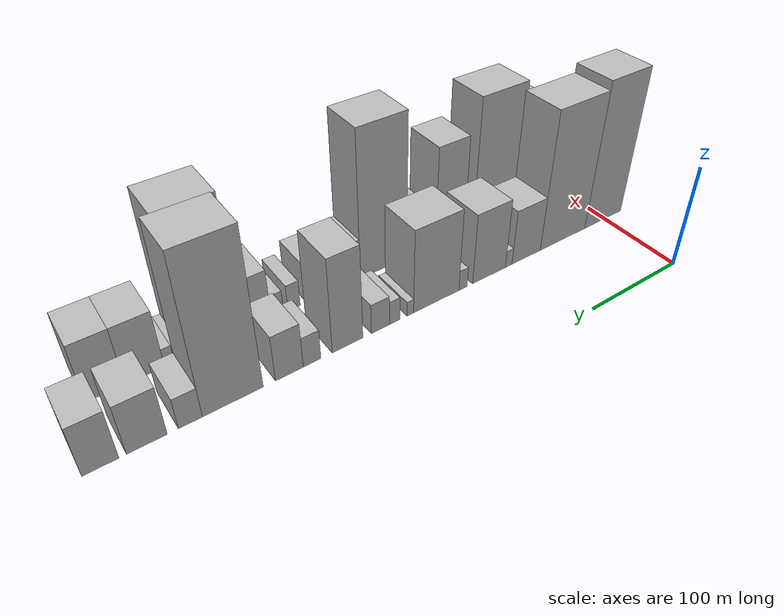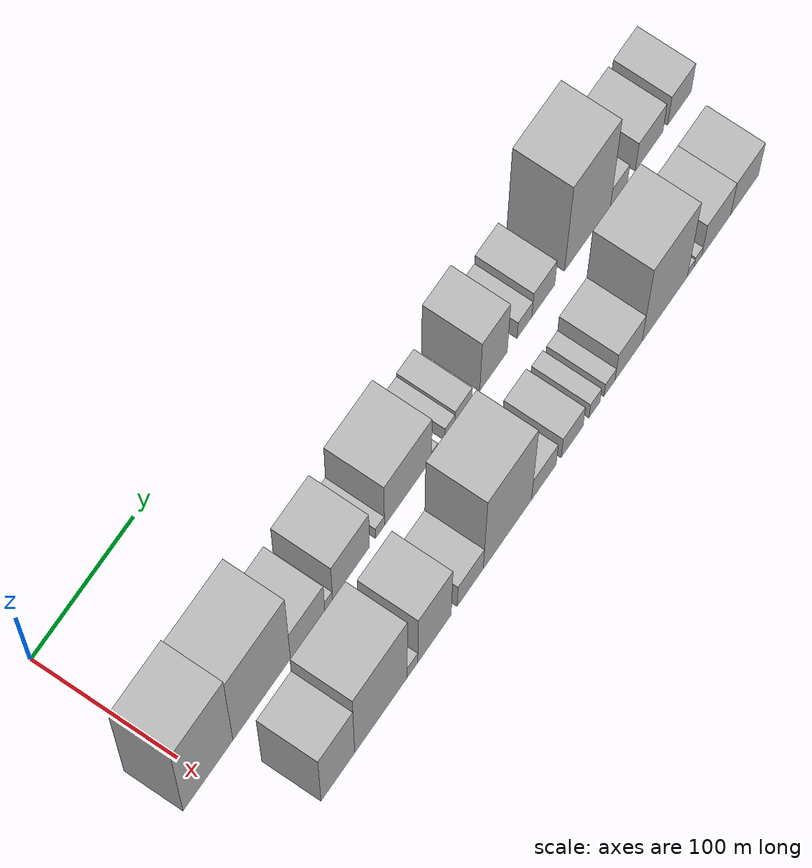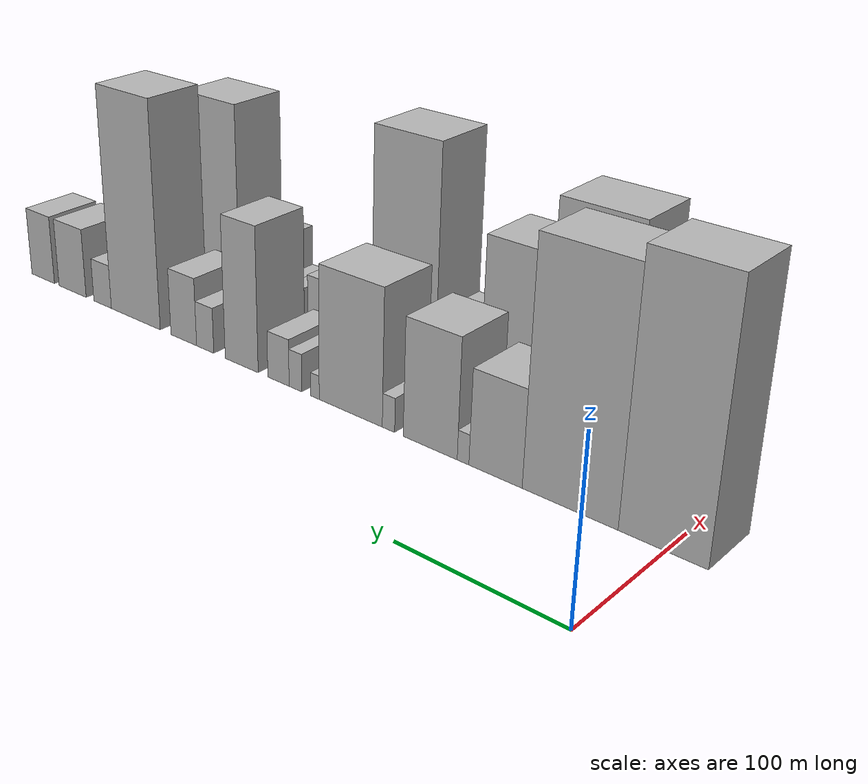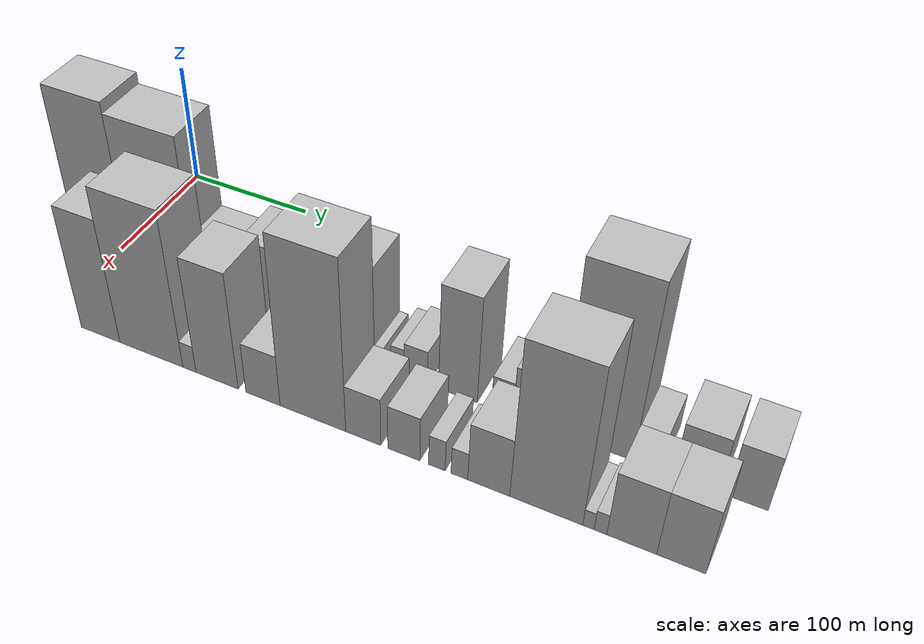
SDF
<sdf version="1.6">
 <world name="default">
  <model name="building_15">
   <static>1</static>
   <pose>100.0000 1.8041 0 0.000000 0.000000 0.000000</pose>
   <link name="link">
    <pose>0 0 75.00 0 0 0</pose>
    <collision name="collision"><geometry><box><size>40.0000 48.3091 150.0000</size></box></geometry></collision>
    <visual name="visual">
     <cast_shadows>0</cast_shadows>
     <geometry><box><size>40.0000 48.3091 150.0000</size></box></geometry>
     <material>
      <script>
       <uri>model://HANNAS_wall/materials/scripts</uri>
       <uri>model://HANNAS_wall/materials/textures</uri>
       <name>vrc/HANNAS_wall</name>
      </script>
     </material>
    </visual>
   </link>
  </model>
  <model name="building_16">
   <static>1</static>
   <pose>100.0000 54.0639 0 0.000000 0.000000 0.000000</pose>
   <link name="link">
    <pose>0 0 70.50 0 0 0</pose>
    <collision name="collision"><geometry><box><size>40.0000 56.2105 141.0000</size></box></geometry></collision>
    <visual name="visual">
     <cast_shadows>0</cast_shadows>
     <geometry><box><size>40.0000 56.2105 141.0000</size></box></geometry>
     <material>
      <script>
       <uri>model://HANNAS_wall/materials/scripts</uri>
       <uri>model://HANNAS_wall/materials/textures</uri>
       <name>vrc/HANNAS_wall</name>
      </script>
     </material>
    </visual>
   </link>
  </model>
  <model name="building_17">
   <static>1</static>
   <pose>100.0000 99.0223 0 0.000000 0.000000 0.000000</pose>
   <link name="link">
    <pose>0 0 28.50 0 0 0</pose>
    <collision name="collision"><geometry><box><size>40.0000 33.7064 57.0000</size></box></geometry></collision>
    <visual name="visual">
     <cast_shadows>0</cast_shadows>
     <geometry><box><size>40.0000 33.7064 57.0000</size></box></geometry>
     <material>
      <script>
       <uri>model://HANNAS_wall/materials/scripts</uri>
       <uri>model://HANNAS_wall/materials/textures</uri>
       <name>vrc/HANNAS_wall</name>
      </script>
     </material>
    </visual>
   </link>
  </model>
  <model name="building_18">
   <static>1</static>
   <pose>100.0000 119.7152 0 0.000000 0.000000 0.000000</pose>
   <link name="link">
    <pose>0 0 9.00 0 0 0</pose>
    <collision name="collision"><geometry><box><size>40.0000 7.6794 18.0000</size></box></geometry></collision>
    <visual name="visual">
     <cast_shadows>0</cast_shadows>
     <geometry><box><size>40.0000 7.6794 18.0000</size></box></geometry>
     <material>
      <script>
       <uri>model://HANNAS_wall/materials/scripts</uri>
       <uri>model://HANNAS_wall/materials/textures</uri>
       <name>vrc/HANNAS_wall</name>
      </script>
     </material>
    </visual>
   </link>
  </model>
  <model name="building_19">
   <static>1</static>
   <pose>100.0000 141.9152 0 0.000000 0.000000 0.000000</pose>
   <link name="link">
    <pose>0 0 36.00 0 0 0</pose>
    <collision name="collision"><geometry><box><size>40.0000 36.7206 72.0000</size></box></geometry></collision>
    <visual name="visual">
     <cast_shadows>0</cast_shadows>
     <geometry><box><size>40.0000 36.7206 72.0000</size></box></geometry>
     <material>
      <script>
       <uri>model://HANNAS_wall/materials/scripts</uri>
       <uri>model://HANNAS_wall/materials/textures</uri>
       <name>vrc/HANNAS_wall</name>
      </script>
     </material>
    </visual>
   </link>
  </model>
  <model name="building_20">
   <static>1</static>
   <pose>100.0000 170.6865 0 0.000000 0.000000 0.000000</pose>
   <link name="link">
    <pose>0 0 10.50 0 0 0</pose>
    <collision name="collision"><geometry><box><size>40.0000 8.8220 21.0000</size></box></geometry></collision>
    <visual name="visual">
     <cast_shadows>0</cast_shadows>
     <geometry><box><size>40.0000 8.8220 21.0000</size></box></geometry>
     <material>
      <script>
       <uri>model://HANNAS_wall/materials/scripts</uri>
       <uri>model://HANNAS_wall/materials/textures</uri>
       <name>vrc/HANNAS_wall</name>
      </script>
     </material>
    </visual>
   </link>
  </model>
  <model name="building_21">
   <static>1</static>
   <pose>100.0000 198.5647 0 0.000000 0.000000 0.000000</pose>
   <link name="link">
    <pose>0 0 42.00 0 0 0</pose>
    <collision name="collision"><geometry><box><size>40.0000 46.9344 84.0000</size></box></geometry></collision>
    <visual name="visual">
     <cast_shadows>0</cast_shadows>
     <geometry><box><size>40.0000 46.9344 84.0000</size></box></geometry>
     <material>
      <script>
       <uri>model://HANNAS_wall/materials/scripts</uri>
       <uri>model://HANNAS_wall/materials/textures</uri>
       <name>vrc/HANNAS_wall</name>
      </script>
     </material>
    </visual>
   </link>
  </model>
  <model name="building_22">
   <static>1</static>
   <pose>100.0000 225.3396 0 0.000000 0.000000 0.000000</pose>
   <link name="link">
    <pose>0 0 7.50 0 0 0</pose>
    <collision name="collision"><geometry><box><size>40.0000 6.6154 15.0000</size></box></geometry></collision>
    <visual name="visual">
     <cast_shadows>0</cast_shadows>
     <geometry><box><size>40.0000 6.6154 15.0000</size></box></geometry>
     <material>
      <script>
       <uri>model://HANNAS_wall/materials/scripts</uri>
       <uri>model://HANNAS_wall/materials/textures</uri>
       <name>vrc/HANNAS_wall</name>
      </script>
     </material>
    </visual>
   </link>
  </model>
  <model name="building_23">
   <static>1</static>
   <pose>100.0000 240.6629 0 0.000000 0.000000 0.000000</pose>
   <link name="link">
    <pose>0 0 12.00 0 0 0</pose>
    <collision name="collision"><geometry><box><size>40.0000 10.0314 24.0000</size></box></geometry></collision>
    <visual name="visual">
     <cast_shadows>0</cast_shadows>
     <geometry><box><size>40.0000 10.0314 24.0000</size></box></geometry>
     <material>
      <script>
       <uri>model://HANNAS_wall/materials/scripts</uri>
       <uri>model://HANNAS_wall/materials/textures</uri>
       <name>vrc/HANNAS_wall</name>
      </script>
     </material>
    </visual>
   </link>
  </model>
  <model name="building_24">
   <static>1</static>
   <pose>100.0000 254.2844 0 0.000000 0.000000 0.000000</pose>
   <link name="link">
    <pose>0 0 15.00 0 0 0</pose>
    <collision name="collision"><geometry><box><size>40.0000 17.2115 30.0000</size></box></geometry></collision>
    <visual name="visual">
     <cast_shadows>0</cast_shadows>
     <geometry><box><size>40.0000 17.2115 30.0000</size></box></geometry>
     <material>
      <script>
       <uri>model://HANNAS_wall/materials/scripts</uri>
       <uri>model://HANNAS_wall/materials/textures</uri>
       <name>vrc/HANNAS_wall</name>
      </script>
     </material>
    </visual>
   </link>
  </model>
  <model name="building_25">
   <static>1</static>
   <pose>100.0000 284.8559 0 0.000000 0.000000 0.000000</pose>
   <link name="link">
    <pose>0 0 46.50 0 0 0</pose>
    <collision name="collision"><geometry><box><size>40.0000 27.9316 93.0000</size></box></geometry></collision>
    <visual name="visual">
     <cast_shadows>0</cast_shadows>
     <geometry><box><size>40.0000 27.9316 93.0000</size></box></geometry>
     <material>
      <script>
       <uri>model://HANNAS_wall/materials/scripts</uri>
       <uri>model://HANNAS_wall/materials/textures</uri>
       <name>vrc/HANNAS_wall</name>
      </script>
     </material>
    </visual>
   </link>
  </model>
  <model name="building_26">
   <static>1</static>
   <pose>100.0000 316.4387 0 0.000000 0.000000 0.000000</pose>
   <link name="link">
    <pose>0 0 15.00 0 0 0</pose>
    <collision name="collision"><geometry><box><size>40.0000 15.2339 30.0000</size></box></geometry></collision>
    <visual name="visual">
     <cast_shadows>0</cast_shadows>
     <geometry><box><size>40.0000 15.2339 30.0000</size></box></geometry>
     <material>
      <script>
       <uri>model://HANNAS_wall/materials/scripts</uri>
       <uri>model://HANNAS_wall/materials/textures</uri>
       <name>vrc/HANNAS_wall</name>
      </script>
     </material>
    </visual>
   </link>
  </model>
  <model name="building_27">
   <static>1</static>
   <pose>100.0000 335.7708 0 0.000000 0.000000 0.000000</pose>
   <link name="link">
    <pose>0 0 22.50 0 0 0</pose>
    <collision name="collision"><geometry><box><size>40.0000 23.4305 45.0000</size></box></geometry></collision>
    <visual name="visual">
     <cast_shadows>0</cast_shadows>
     <geometry><box><size>40.0000 23.4305 45.0000</size></box></geometry>
     <material>
      <script>
       <uri>model://HANNAS_wall/materials/scripts</uri>
       <uri>model://HANNAS_wall/materials/textures</uri>
       <name>vrc/HANNAS_wall</name>
      </script>
     </material>
    </visual>
   </link>
  </model>
  <model name="building_28">
   <static>1</static>
   <pose>100.0000 381.2269 0 0.000000 0.000000 0.000000</pose>
   <link name="link">
    <pose>0 0 75.00 0 0 0</pose>
    <collision name="collision"><geometry><box><size>40.0000 47.4817 150.0000</size></box></geometry></collision>
    <visual name="visual">
     <cast_shadows>0</cast_shadows>
     <geometry><box><size>40.0000 47.4817 150.0000</size></box></geometry>
     <material>
      <script>
       <uri>model://HANNAS_wall/materials/scripts</uri>
       <uri>model://HANNAS_wall/materials/textures</uri>
       <name>vrc/HANNAS_wall</name>
      </script>
     </material>
    </visual>
   </link>
  </model>
  <model name="building_29">
   <static>1</static>
   <pose>100.0000 413.8566 0 0.000000 0.000000 0.000000</pose>
   <link name="link">
    <pose>0 0 15.00 0 0 0</pose>
    <collision name="collision"><geometry><box><size>40.0000 17.7777 30.0000</size></box></geometry></collision>
    <visual name="visual">
     <cast_shadows>0</cast_shadows>
     <geometry><box><size>40.0000 17.7777 30.0000</size></box></geometry>
     <material>
      <script>
       <uri>model://HANNAS_wall/materials/scripts</uri>
       <uri>model://HANNAS_wall/materials/textures</uri>
       <name>vrc/HANNAS_wall</name>
      </script>
     </material>
    </visual>
   </link>
  </model>
  <model name="building_30">
   <static>1</static>
   <pose>100.0000 445.0849 0 0.000000 0.000000 0.000000</pose>
   <link name="link">
    <pose>0 0 24.00 0 0 0</pose>
    <collision name="collision"><geometry><box><size>40.0000 28.6789 48.0000</size></box></geometry></collision>
    <visual name="visual">
     <cast_shadows>0</cast_shadows>
     <geometry><box><size>40.0000 28.6789 48.0000</size></box></geometry>
     <material>
      <script>
       <uri>model://HANNAS_wall/materials/scripts</uri>
       <uri>model://HANNAS_wall/materials/textures</uri>
       <name>vrc/HANNAS_wall</name>
      </script>
     </material>
    </visual>
   </link>
  </model>
  <model name="building_31">
   <static>1</static>
   <pose>100.0000 476.7768 0 0.000000 0.000000 0.000000</pose>
   <link name="link">
    <pose>0 0 24.00 0 0 0</pose>
    <collision name="collision"><geometry><box><size>40.0000 24.7049 48.0000</size></box></geometry></collision>
    <visual name="visual">
     <cast_shadows>0</cast_shadows>
     <geometry><box><size>40.0000 24.7049 48.0000</size></box></geometry>
     <material>
      <script>
       <uri>model://HANNAS_wall/materials/scripts</uri>
       <uri>model://HANNAS_wall/materials/textures</uri>
       <name>vrc/HANNAS_wall</name>
      </script>
     </material>
    </visual>
   </link>
  </model>
  <model name="building_48">
   <static>1</static>
   <pose>160.0000 41.7824 0 0.000000 0.000000 0.000000</pose>
   <link name="link">
    <pose>0 0 54.00 0 0 0</pose>
    <collision name="collision"><geometry><box><size>40.0000 32.8818 108.0000</size></box></geometry></collision>
    <visual name="visual">
     <cast_shadows>0</cast_shadows>
     <geometry><box><size>40.0000 32.8818 108.0000</size></box></geometry>
     <material>
      <script>
       <uri>model://HANNAS_wall/materials/scripts</uri>
       <uri>model://HANNAS_wall/materials/textures</uri>
       <name>vrc/HANNAS_wall</name>
      </script>
     </material>
    </visual>
   </link>
  </model>
  <model name="building_49">
   <static>1</static>
   <pose>160.0000 84.0958 0 0.000000 0.000000 0.000000</pose>
   <link name="link">
    <pose>0 0 67.50 0 0 0</pose>
    <collision name="collision"><geometry><box><size>40.0000 51.7450 135.0000</size></box></geometry></collision>
    <visual name="visual">
     <cast_shadows>0</cast_shadows>
     <geometry><box><size>40.0000 51.7450 135.0000</size></box></geometry>
     <material>
      <script>
       <uri>model://HANNAS_wall/materials/scripts</uri>
       <uri>model://HANNAS_wall/materials/textures</uri>
       <name>vrc/HANNAS_wall</name>
      </script>
     </material>
    </visual>
   </link>
  </model>
  <model name="building_50">
   <static>1</static>
   <pose>160.0000 115.2137 0 0.000000 0.000000 0.000000</pose>
   <link name="link">
    <pose>0 0 12.00 0 0 0</pose>
    <collision name="collision"><geometry><box><size>40.0000 10.4908 24.0000</size></box></geometry></collision>
    <visual name="visual">
     <cast_shadows>0</cast_shadows>
     <geometry><box><size>40.0000 10.4908 24.0000</size></box></geometry>
     <material>
      <script>
       <uri>model://HANNAS_wall/materials/scripts</uri>
       <uri>model://HANNAS_wall/materials/textures</uri>
       <name>vrc/HANNAS_wall</name>
      </script>
     </material>
    </visual>
   </link>
  </model>
  <model name="building_51">
   <static>1</static>
   <pose>160.0000 137.0658 0 0.000000 0.000000 0.000000</pose>
   <link name="link">
    <pose>0 0 51.00 0 0 0</pose>
    <collision name="collision"><geometry><box><size>40.0000 33.2134 102.0000</size></box></geometry></collision>
    <visual name="visual">
     <cast_shadows>0</cast_shadows>
     <geometry><box><size>40.0000 33.2134 102.0000</size></box></geometry>
     <material>
      <script>
       <uri>model://HANNAS_wall/materials/scripts</uri>
       <uri>model://HANNAS_wall/materials/textures</uri>
       <name>vrc/HANNAS_wall</name>
      </script>
     </material>
    </visual>
   </link>
  </model>
  <model name="building_52">
   <static>1</static>
   <pose>160.0000 172.7191 0 0.000000 0.000000 0.000000</pose>
   <link name="link">
    <pose>0 0 22.50 0 0 0</pose>
    <collision name="collision"><geometry><box><size>40.0000 26.0932 45.0000</size></box></geometry></collision>
    <visual name="visual">
     <cast_shadows>0</cast_shadows>
     <geometry><box><size>40.0000 26.0932 45.0000</size></box></geometry>
     <material>
      <script>
       <uri>model://HANNAS_wall/materials/scripts</uri>
       <uri>model://HANNAS_wall/materials/textures</uri>
       <name>vrc/HANNAS_wall</name>
      </script>
     </material>
    </visual>
   </link>
  </model>
  <model name="building_53">
   <static>1</static>
   <pose>160.0000 210.0413 0 0.000000 0.000000 0.000000</pose>
   <link name="link">
    <pose>0 0 73.50 0 0 0</pose>
    <collision name="collision"><geometry><box><size>40.0000 48.5513 147.0000</size></box></geometry></collision>
    <visual name="visual">
     <cast_shadows>0</cast_shadows>
     <geometry><box><size>40.0000 48.5513 147.0000</size></box></geometry>
     <material>
      <script>
       <uri>model://HANNAS_wall/materials/scripts</uri>
       <uri>model://HANNAS_wall/materials/textures</uri>
       <name>vrc/HANNAS_wall</name>
      </script>
     </material>
    </visual>
   </link>
  </model>
  <model name="building_54">
   <static>1</static>
   <pose>160.0000 246.8471 0 0.000000 0.000000 0.000000</pose>
   <link name="link">
    <pose>0 0 21.00 0 0 0</pose>
    <collision name="collision"><geometry><box><size>40.0000 25.0604 42.0000</size></box></geometry></collision>
    <visual name="visual">
     <cast_shadows>0</cast_shadows>
     <geometry><box><size>40.0000 25.0604 42.0000</size></box></geometry>
     <material>
      <script>
       <uri>model://HANNAS_wall/materials/scripts</uri>
       <uri>model://HANNAS_wall/materials/textures</uri>
       <name>vrc/HANNAS_wall</name>
      </script>
     </material>
    </visual>
   </link>
  </model>
  <model name="building_55">
   <static>1</static>
   <pose>160.0000 275.5792 0 0.000000 0.000000 0.000000</pose>
   <link name="link">
    <pose>0 0 19.50 0 0 0</pose>
    <collision name="collision"><geometry><box><size>40.0000 22.4037 39.0000</size></box></geometry></collision>
    <visual name="visual">
     <cast_shadows>0</cast_shadows>
     <geometry><box><size>40.0000 22.4037 39.0000</size></box></geometry>
     <material>
      <script>
       <uri>model://HANNAS_wall/materials/scripts</uri>
       <uri>model://HANNAS_wall/materials/textures</uri>
       <name>vrc/HANNAS_wall</name>
      </script>
     </material>
    </visual>
   </link>
  </model>
  <model name="building_56">
   <static>1</static>
   <pose>160.0000 298.4655 0 0.000000 0.000000 0.000000</pose>
   <link name="link">
    <pose>0 0 13.50 0 0 0</pose>
    <collision name="collision"><geometry><box><size>40.0000 11.3691 27.0000</size></box></geometry></collision>
    <visual name="visual">
     <cast_shadows>0</cast_shadows>
     <geometry><box><size>40.0000 11.3691 27.0000</size></box></geometry>
     <material>
      <script>
       <uri>model://HANNAS_wall/materials/scripts</uri>
       <uri>model://HANNAS_wall/materials/textures</uri>
       <name>vrc/HANNAS_wall</name>
      </script>
     </material>
    </visual>
   </link>
  </model>
  <model name="building_57">
   <static>1</static>
   <pose>160.0000 313.7511 0 0.000000 0.000000 0.000000</pose>
   <link name="link">
    <pose>0 0 12.00 0 0 0</pose>
    <collision name="collision"><geometry><box><size>40.0000 11.2020 24.0000</size></box></geometry></collision>
    <visual name="visual">
     <cast_shadows>0</cast_shadows>
     <geometry><box><size>40.0000 11.2020 24.0000</size></box></geometry>
     <material>
      <script>
       <uri>model://HANNAS_wall/materials/scripts</uri>
       <uri>model://HANNAS_wall/materials/textures</uri>
       <name>vrc/HANNAS_wall</name>
      </script>
     </material>
    </visual>
   </link>
  </model>
  <model name="building_58">
   <static>1</static>
   <pose>160.0000 333.2796 0 0.000000 0.000000 0.000000</pose>
   <link name="link">
    <pose>0 0 25.50 0 0 0</pose>
    <collision name="collision"><geometry><box><size>40.0000 27.8549 51.0000</size></box></geometry></collision>
    <visual name="visual">
     <cast_shadows>0</cast_shadows>
     <geometry><box><size>40.0000 27.8549 51.0000</size></box></geometry>
     <material>
      <script>
       <uri>model://HANNAS_wall/materials/scripts</uri>
       <uri>model://HANNAS_wall/materials/textures</uri>
       <name>vrc/HANNAS_wall</name>
      </script>
     </material>
    </visual>
   </link>
  </model>
  <model name="building_59">
   <static>1</static>
   <pose>160.0000 370.6299 0 0.000000 0.000000 0.000000</pose>
   <link name="link">
    <pose>0 0 67.50 0 0 0</pose>
    <collision name="collision"><geometry><box><size>40.0000 46.8457 135.0000</size></box></geometry></collision>
    <visual name="visual">
     <cast_shadows>0</cast_shadows>
     <geometry><box><size>40.0000 46.8457 135.0000</size></box></geometry>
     <material>
      <script>
       <uri>model://HANNAS_wall/materials/scripts</uri>
       <uri>model://HANNAS_wall/materials/textures</uri>
       <name>vrc/HANNAS_wall</name>
      </script>
     </material>
    </visual>
   </link>
  </model>
  <model name="building_60">
   <static>1</static>
   <pose>160.0000 397.5866 0 0.000000 0.000000 0.000000</pose>
   <link name="link">
    <pose>0 0 7.50 0 0 0</pose>
    <collision name="collision"><geometry><box><size>40.0000 7.0677 15.0000</size></box></geometry></collision>
    <visual name="visual">
     <cast_shadows>0</cast_shadows>
     <geometry><box><size>40.0000 7.0677 15.0000</size></box></geometry>
     <material>
      <script>
       <uri>model://HANNAS_wall/materials/scripts</uri>
       <uri>model://HANNAS_wall/materials/textures</uri>
       <name>vrc/HANNAS_wall</name>
      </script>
     </material>
    </visual>
   </link>
  </model>
  <model name="building_61">
   <static>1</static>
   <pose>160.0000 405.0201 0 0.000000 0.000000 0.000000</pose>
   <link name="link">
    <pose>0 0 9.00 0 0 0</pose>
    <collision name="collision"><geometry><box><size>40.0000 7.7992 18.0000</size></box></geometry></collision>
    <visual name="visual">
     <cast_shadows>0</cast_shadows>
     <geometry><box><size>40.0000 7.7992 18.0000</size></box></geometry>
     <material>
      <script>
       <uri>model://HANNAS_wall/materials/scripts</uri>
       <uri>model://HANNAS_wall/materials/textures</uri>
       <name>vrc/HANNAS_wall</name>
      </script>
     </material>
    </visual>
   </link>
  </model>
  <model name="building_62">
   <static>1</static>
   <pose>160.0000 424.1263 0 0.000000 0.000000 0.000000</pose>
   <link name="link">
    <pose>0 0 28.50 0 0 0</pose>
    <collision name="collision"><geometry><box><size>40.0000 30.4131 57.0000</size></box></geometry></collision>
    <visual name="visual">
     <cast_shadows>0</cast_shadows>
     <geometry><box><size>40.0000 30.4131 57.0000</size></box></geometry>
     <material>
      <script>
       <uri>model://HANNAS_wall/materials/scripts</uri>
       <uri>model://HANNAS_wall/materials/textures</uri>
       <name>vrc/HANNAS_wall</name>
      </script>
     </material>
    </visual>
   </link>
  </model>
  <model name="building_63">
   <static>1</static>
   <pose>160.0000 453.8920 0 0.000000 0.000000 0.000000</pose>
   <link name="link">
    <pose>0 0 28.50 0 0 0</pose>
    <collision name="collision"><geometry><box><size>40.0000 29.1182 57.0000</size></box></geometry></collision>
    <visual name="visual">
     <cast_shadows>0</cast_shadows>
     <geometry><box><size>40.0000 29.1182 57.0000</size></box></geometry>
     <material>
      <script>
       <uri>model://HANNAS_wall/materials/scripts</uri>
       <uri>model://HANNAS_wall/materials/textures</uri>
       <name>vrc/HANNAS_wall</name>
      </script>
     </material>
    </visual>
   </link>
  </model>
 </world>
</sdf>
